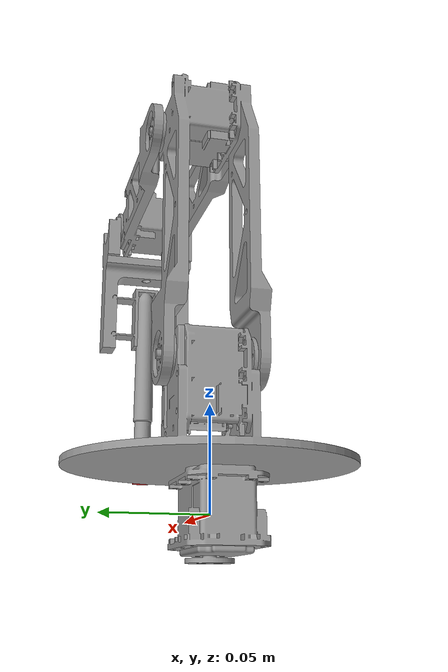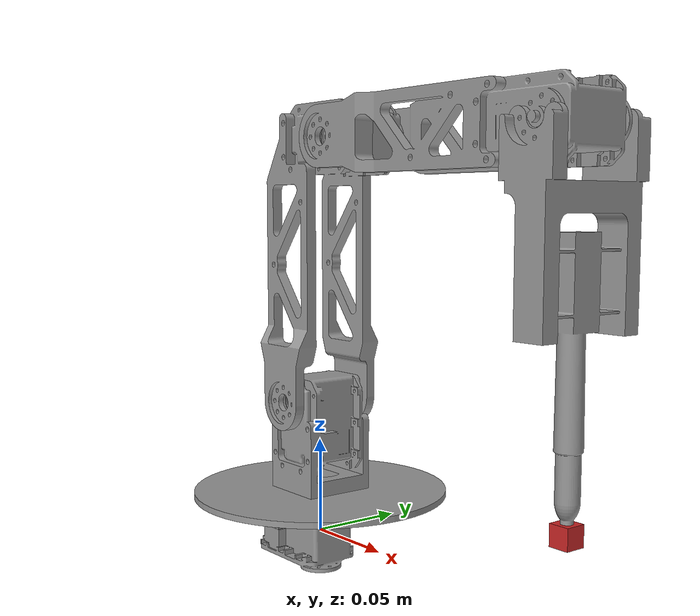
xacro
<?xml version="1.0"?>
<!-- Open_Manipulator Chain -->
<robot name="doodlebot" xmlns:xacro="http://ros.org/wiki/xacro">

  <!-- Import Rviz colors -->
  <xacro:include filename="$(find open_manipulator_description)/urdf/materials.xacro" />

  <!-- Import all Gazebo-customization elements, including Gazebo colors -->
  <xacro:include filename="$(find open_manipulator_description)/urdf/open_manipulator.gazebo.xacro" />

  <!-- Import Transmission -->
  <xacro:include filename="$(find open_manipulator_description)/urdf/open_manipulator.transmission.xacro" />

  <!-- Import URDF -->
  <xacro:include filename="$(find mae263a)/urdf/doodlebot.urdf.xacro" />

  <!-- World -->
  <link name="world"/>

  <!-- World fixed joint-->
  <joint name="world_fixed" type="fixed">
    <origin xyz="0 0 0" rpy="0 0 0"/>
    <parent link="world"/>
    <child link="link1"/>
  </joint>

</robot>

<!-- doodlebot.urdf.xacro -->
<!-- Open_Manipulator Chain -->
<robot xmlns:xacro="http://ros.org/wiki/xacro">

  <!-- Link 1 -->
  <link name="link1">
    <visual>
      <origin xyz="-0.0386 -0.0178 -0.0207" rpy="0 0 0"/>
      <geometry>
        <mesh filename="package://mae263a/meshes/chain_link1.stl" scale="0.001 0.001 0.001"/>
      </geometry>
      <material name="grey"/>
    </visual>

    <collision>
      <origin xyz="0 0 0" rpy="0 0 0"/>
      <geometry>
        <mesh filename="package://mae263a/meshes/chain_link1.stl" scale="0.001 0.001 0.001"/>
      </geometry>
    </collision>

    <inertial>
      <origin xyz="3.0876154e-04 0.0000000e+00 -1.2176461e-04" />
      <mass value="7.9119962e-02" />
      <inertia ixx="1.2505234e-05" ixy="0.0" ixz="-1.7855208e-07"
               iyy="2.1898364e-05" iyz="0.0"
               izz="1.9267361e-05" />
    </inertial>
  </link>

  <!-- Joint 1 -->
  <joint name="joint1" type="revolute">
    <parent link="link1"/>
    <child link="link2"/>
    <origin xyz="0.0 0.0 0.0" rpy="0 0 0"/>
    <axis xyz="0 0 1"/>
    <limit velocity="4.8" effort="1" lower="${-pi*0.9}" upper="${pi*0.9}" />
  </joint>

  <!--  Link 2 -->
  <link name="link2">
    <visual>
      <origin xyz="-0.0675 -0.0675 0.0205" rpy="0 0 0"/>
      <geometry>
        <mesh filename="package://mae263a/meshes/chain_link2.stl" scale="0.001 0.001 0.001"/>
      </geometry>
      <material name="grey"/>
    </visual>

    <collision>
      <origin xyz="0 0 0" rpy="0 0 0"/>
      <geometry>
        <mesh filename="package://mae263a/meshes/chain_link2.stl" scale="0.001 0.001 0.001"/>
      </geometry>
    </collision>

    <inertial>
      <origin xyz="-3.0184870e-04 5.4043684e-04 ${0.018 + 2.9433464e-02}" />
      <mass value="9.8406837e-02" />
      <inertia ixx="3.4543422e-05" ixy="-1.6031095e-08" ixz="-3.8375155e-07"
               iyy="3.2689329e-05" iyz="2.8511935e-08"
               izz="1.8850320e-05" />
    </inertial>
  </link>

  <!--  Joint 2 -->
  <joint name="joint2" type="revolute">
    <parent link="link2"/>
    <child link="link3"/>
    <origin xyz="0.0 0.0 0.072475" rpy="0 0 0"/>
    <axis xyz="0 1 0"/>
    <limit velocity="4.8" effort="1" lower="${-pi*0.57}" upper="${pi*0.5}" />
  </joint>

  <!--  Link 3 -->
  <link name="link3">
    <visual>
      <origin xyz="-0.01795 -0.0257 -0.0145" rpy="0 0 0"/>
      <geometry>
        <mesh filename="package://mae263a/meshes/chain_link3.stl" scale="0.001 0.001 0.001"/>
      </geometry>
      <material name="grey"/>
    </visual>

    <collision>
      <origin xyz="0 0 0" rpy="0 0 0"/>
      <geometry>
        <mesh filename="package://mae263a/meshes/chain_link3.stl" scale="0.001 0.001 0.001"/>
      </geometry>
    </collision>

    <inertial>
      <origin xyz="1.0308393e-02 3.7743363e-04 1.0170197e-01" />
      <mass value="1.3850917e-01" />
      <inertia ixx="3.3055381e-04" ixy="-9.7940978e-08" ixz="-3.8505711e-05"
               iyy="3.4290447e-04" iyz="-1.5717516e-06"
               izz="6.0346498e-05" />
    </inertial>
  </link>

  <!--  Joint 3 -->
  <joint name="joint3" type="revolute">
    <parent link="link3"/>
    <child link="link4"/>
    <origin xyz="0.033335 0 0.135" rpy="0 0 0"/>
    <axis xyz="0 1 0"/>
    <limit velocity="4.8" effort="1" lower="${-pi*0.3}" upper="${pi*0.44}" />
  </joint>

  <!--  Link 4 -->
  <link name="link4">
    <visual>
      <origin xyz="-0.015 -0.0257 -0.018" rpy="0 0 0"/>
      <geometry>
        <mesh filename="package://mae263a/meshes/chain_link4.stl" scale="0.001 0.001 0.001"/>
      </geometry>
      <material name="grey"/>
    </visual>

    <collision>
      <origin xyz="0 0 0" rpy="0 0 0"/>
      <geometry>
        <mesh filename="package://mae263a/meshes/chain_link4.stl" scale="0.001 0.001 0.001"/>
      </geometry>
    </collision>

    <inertial>
      <origin xyz="9.0909590e-02 3.8929816e-04 2.2413279e-04" />
      <mass value="1.3274562e-01" />
      <inertia ixx="3.0654178e-05" ixy="-1.2764155e-06" ixz="-2.6874417e-07"
               iyy="2.4230292e-04" iyz="1.1559550e-08"
               izz="2.5155057e-04" />
    </inertial>
  </link>

  <!--  Joint 4 -->
  <joint name="joint4" type="revolute">
    <parent link="link4"/>
    <child link="link5"/>
    <origin xyz="0.140 0.0 0.0" rpy="0 0 0"/>
    <axis xyz="0 1 0"/>
    <limit velocity="4.8" effort="1" lower="${-pi*0.57}" upper="${pi*0.65}" />
  </joint>

  <!--  Link 5 -->
  <link name="link5">
    <visual>
      <origin xyz="-0.014 0.0287 0.00475" rpy="${pi} 0 0"/>
      <geometry>
        <mesh filename="package://mae263a/meshes/chain_link5.stl" scale="0.001 0.001 0.001"/>
      </geometry>
      <material name="grey"/>
    </visual>

    <collision>
      <origin xyz="0 0 0" rpy="0 0 0"/>
      <geometry>
        <mesh filename="package://mae263a/meshes/chain_link5.stl" scale="0.001 0.001 0.001"/>
      </geometry>
    </collision>

    <inertial>
      <origin xyz="4.4206755e-02 3.6839985e-07 8.9142216e-03" />
      <mass value="1.4327573e-01" />
      <inertia ixx="8.0870749e-05" ixy="0.0" ixz="-1.0157896e-06"
               iyy="7.5980465e-05" iyz="0.0"
               izz="9.3127351e-05" />
    </inertial>
  </link>

  <!--  Gripper joint (dummy)-->
  <joint name="gripper" type="prismatic">
    <parent link="link5"/>
    <child link="gripper_link"/>
    <origin xyz="0 0 0" rpy="0 0 0"/>
    <axis xyz="0 1 0"/>
    <limit velocity="4.8" effort="1" lower="-0.010" upper="0.019" />
  </joint>

  <!--  Gripper link -->
  <link name="gripper_link">
    <visual>
      <origin xyz="0 0 0" rpy="0 0 0"/>
      <geometry>
        <box size="0.001 0.001 0.001" />
      </geometry>
      <material name="grey"/>
     </visual>

    <inertial>
      <origin xyz="0 0 0" />
      <mass value="1.0e-03" />
      <inertia ixx="1.0e-03" ixy="0.0" ixz="0.0"
               iyy="1.0e-03" iyz="0.0"
               izz="1.0e-03" />
    </inertial>
  </link>

  <!--  Gripper joint sub -->
  <joint name="gripper_sub" type="prismatic">
    <parent link="link5"/>
    <child link="gripper_link_sub"/>
    <origin xyz="0 0 0" rpy="0 0 0"/>
    <axis xyz="0 -1 0"/>
    <limit velocity="4.8" effort="1" lower="-0.010" upper="0.019" />
    <mimic joint="gripper" multiplier="1"/>
  </joint>

  <!--  Gripper link sub -->
  <link name="gripper_link_sub">
    <visual>
      <origin xyz="0 0 0" rpy="0 0 0"/>
      <geometry>
        <box size="0.001 0.001 0.001" />
      </geometry>
      <material name="grey"/>
     </visual>

    <inertial>
      <origin xyz="0 0 0" />
      <mass value="1.0e-03" />
      <inertia ixx="1.0e-03" ixy="0.0" ixz="0.0"
               iyy="1.0e-03" iyz="0.0"
               izz="1.0e-03" />
    </inertial>
  </link>

  <!-- end effector joint -->
  <joint name="end_effector_joint" type="fixed">
    <origin xyz="0 0.0 -0.1687" rpy="0 0 0"/>
    <parent link="link5"/>
    <child link="end_effector_link"/>
  </joint>

  <!-- end effector link -->
  <link name="end_effector_link">
    <visual>
      <origin xyz="0 0 0" rpy="0 0 0"/>
      <geometry>
        <box size="0.01 0.01 0.01" />
      </geometry>
      <material name="red"/>
     </visual>

    <inertial>
      <origin xyz="0 0 0" />
      <mass value="1.0e-03" />
      <inertia ixx="1.0e-03" ixy="0.0" ixz="0.0"
               iyy="1.0e-03" iyz="0.0"
               izz="1.0e-03" />
    </inertial>
  </link>

</robot>
